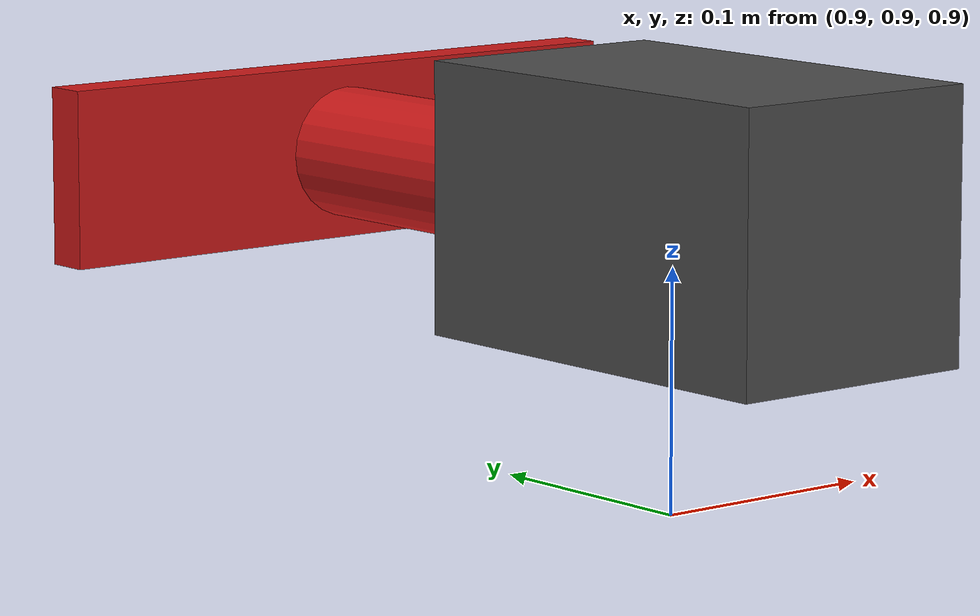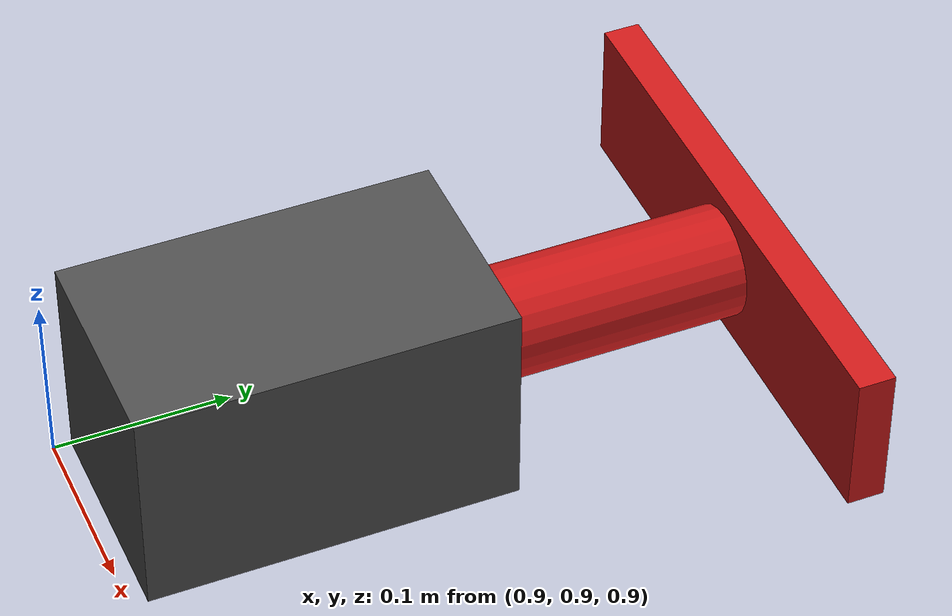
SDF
<?xml version="1.0" ?>
<sdf version="1.10">
  <model name='solenoid_pusher'>
    <static>false</static>
    <pose>1 1 1 0 0 0</pose>

    <link name='solenoid_base'>
      <pose>0 0 0 0 0 0</pose>
      <inertial>
        <mass>5.0</mass>
        <inertia>
          <ixx>0.05</ixx><ixy>0</ixy><ixz>0</ixz>
          <iyy>0.05</iyy><iyz>0</iyz>
          <izz>0.05</izz>
        </inertia>
      </inertial>
      <visual name='base_visual'>
        <geometry>
          <box><size>0.12 0.2 0.12</size></box>
        </geometry>
        <material>
          <ambient>0.3 0.3 0.3 1</ambient>
          <diffuse>0.3 0.3 0.3 1</diffuse>
        </material>
      </visual>
      <collision name='base_collision'>
        <geometry>
          <box><size>0.12 0.2 0.12</size></box>
        </geometry>
      </collision>
    </link>

    <joint name='world_fix' type='fixed'>
      <parent>world</parent>
      <child>solenoid_base</child>
    </joint>

    <link name='pusher_rod'>
      <pose>0 0 0 0 0 0</pose>
      <inertial>
        <mass>0.5</mass>
        <inertia>
          <ixx>0.001</ixx><ixy>0</ixy><ixz>0</ixz>
          <iyy>0.001</iyy><iyz>0</iyz>
          <izz>0.001</izz>
        </inertia>
      </inertial>
      <visual name='rod_visual'>
        <pose>0 0.1 0 1.5708 0 0</pose>
        <geometry>
          <cylinder>
            <radius>0.03</radius>
            <length>0.3</length>
          </cylinder>
        </geometry>
        <material>
          <ambient>0.8 0.1 0.1 1</ambient>
          <diffuse>0.8 0.1 0.1 1</diffuse>
        </material>
      </visual>
      <collision name='rod_collision'>
        <pose>0 0.1 0 1.5708 0 0</pose>
        <geometry>
          <cylinder>
            <radius>0.03</radius>
            <length>0.3</length>
          </cylinder>
        </geometry>
      </collision>
    </link>

    <link name='pusher_blade'>
      <pose>0 0.25 0 0 0 0</pose>
      <inertial>
        <mass>0.2</mass>
        <inertia>
          <ixx>0.001</ixx><ixy>0</ixy><ixz>0</ixz>
          <iyy>0.001</iyy><iyz>0</iyz>
          <izz>0.001</izz>
        </inertia>
      </inertial>
      <visual name='blade_visual'>
        <geometry>
          <box><size>0.3 0.02 0.08</size></box>
        </geometry>
        <material>
          <ambient>0.8 0.1 0.1 1</ambient>
          <diffuse>0.8 0.1 0.1 1</diffuse>
        </material>
      </visual>
      <collision name='blade_collision'>
        <geometry>
          <box><size>0.3 0.02 0.08</size></box>
        </geometry>
      </collision>
    </link>

    <joint name='blade_joint' type='fixed'>
      <parent>pusher_rod</parent>
      <child>pusher_blade</child>
    </joint>

    <joint name='slider_joint' type='prismatic'>
      <parent>solenoid_base</parent>
      <child>pusher_rod</child>
      <axis>
        <xyz>0 1 0</xyz>
        <limit>
          <lower>0.0</lower>
          <upper>0.15</upper>
          <effort>5000</effort>
          <velocity>20.0</velocity>
        </limit>
      </axis>
    </joint>

    <plugin name="gz::sim::systems::JointPositionController" filename="gz-sim-joint-position-controller-system">
      <joint_name>slider_joint</joint_name>
      <topic>/model/solenoid_pusher/joint/slider_joint/cmd_pos</topic>
      <p_gain>5000</p_gain>
      <i_gain>10</i_gain>
      <d_gain>50</d_gain>
    </plugin>

    <!-- Solenoid commands via keyboard (P: push / R: retract) -->

    <plugin name='gz::sim::systems::TriggeredPublisher' filename='gz-sim-triggered-publisher-system'>
      <input type='gz.msgs.Int32' topic='/keyboard/keypress'>
        <match field='data'>80</match> </input>
      <output type='gz.msgs.Double' topic='/model/solenoid_pusher/joint/slider_joint/cmd_pos'>data: 0.15</output>
    </plugin>
    <plugin name='gz::sim::systems::TriggeredPublisher' filename='gz-sim-triggered-publisher-system'>
      <input type='gz.msgs.Int32' topic='/keyboard/keypress'>
        <match field='data'>112</match> </input>
      <output type='gz.msgs.Double' topic='/model/solenoid_pusher/joint/slider_joint/cmd_pos'>data: 0.15</output>
    </plugin>

    <plugin name='gz::sim::systems::TriggeredPublisher' filename='gz-sim-triggered-publisher-system'>
      <input type='gz.msgs.Int32' topic='/keyboard/keypress'>
        <match field='data'>82</match> </input>
      <output type='gz.msgs.Double' topic='/model/solenoid_pusher/joint/slider_joint/cmd_pos'>data: 0.0</output>
    </plugin>
    <plugin name='gz::sim::systems::TriggeredPublisher' filename='gz-sim-triggered-publisher-system'>
      <input type='gz.msgs.Int32' topic='/keyboard/keypress'>
        <match field='data'>114</match> </input>
      <output type='gz.msgs.Double' topic='/model/solenoid_pusher/joint/slider_joint/cmd_pos'>data: 0.0</output>
    </plugin>

  </model>
</sdf>
